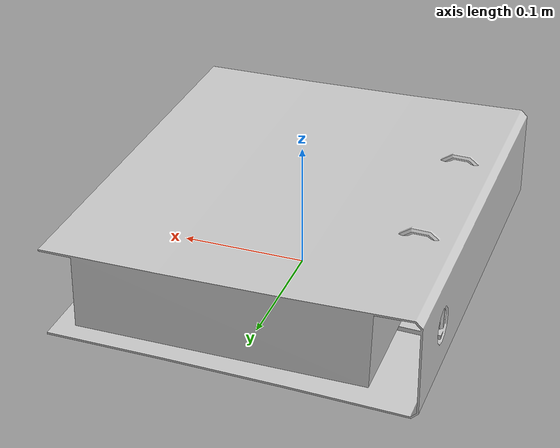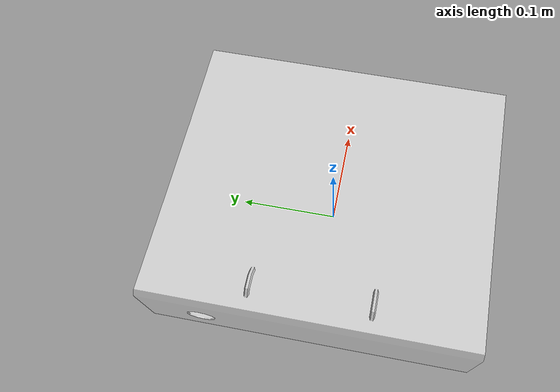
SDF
<sdf version="1.4">
	<model name="folder">
		<link name="link">
			<visual name="mesh">
				<geometry>
					<mesh>
						<uri>model://meshes/folder.dae</uri>
					</mesh>
				</geometry>
			</visual>
			<collision name="box">
				<pose>0 0 0.04 0 0 0</pose>
				<geometry>
					<box>
						<size>0.28 0.32 0.08</size>
					</box>
				</geometry>
			</collision>
		</link>
	</model>
</sdf>
